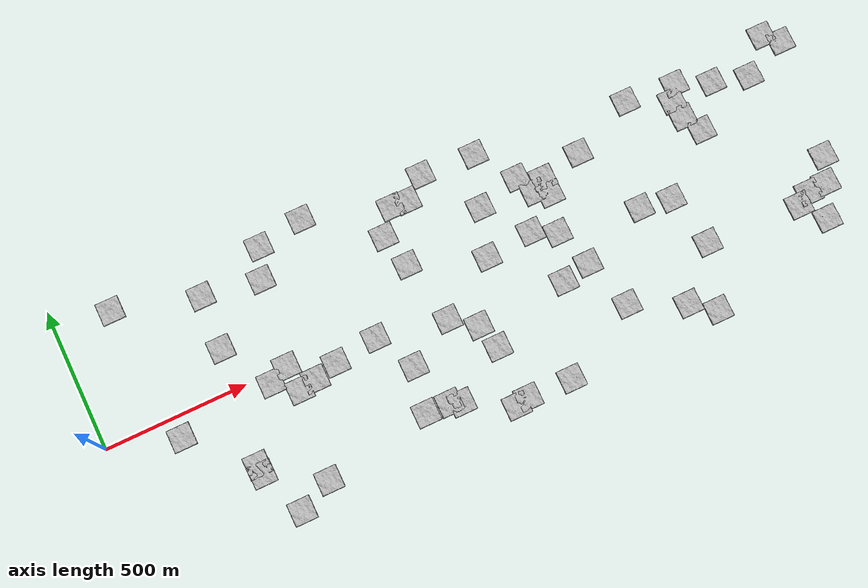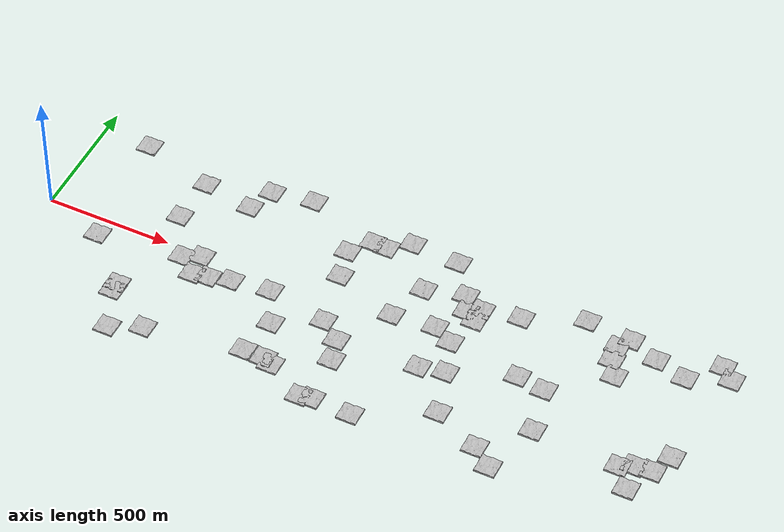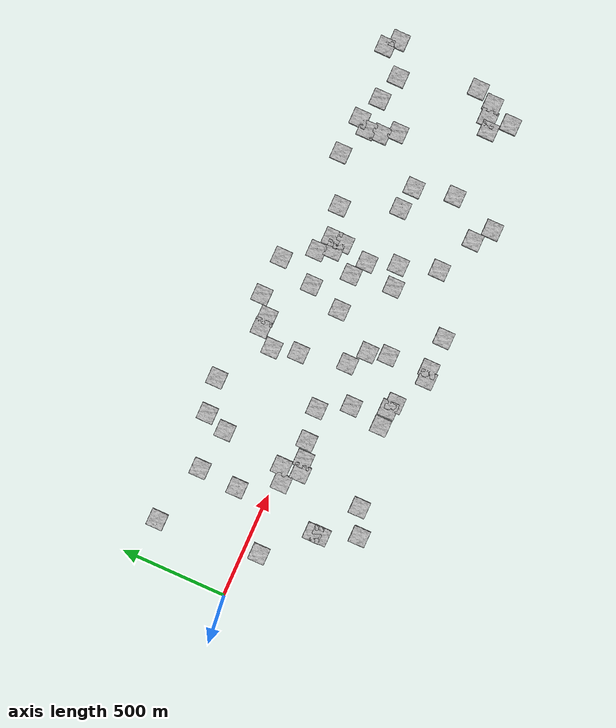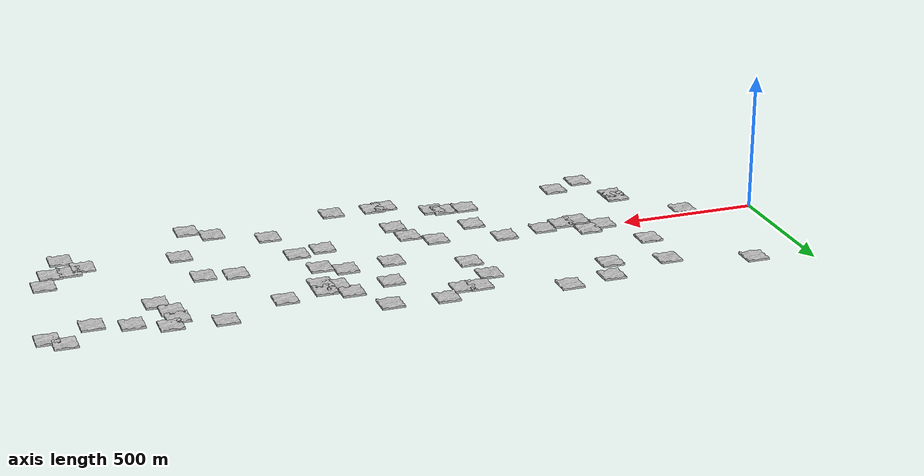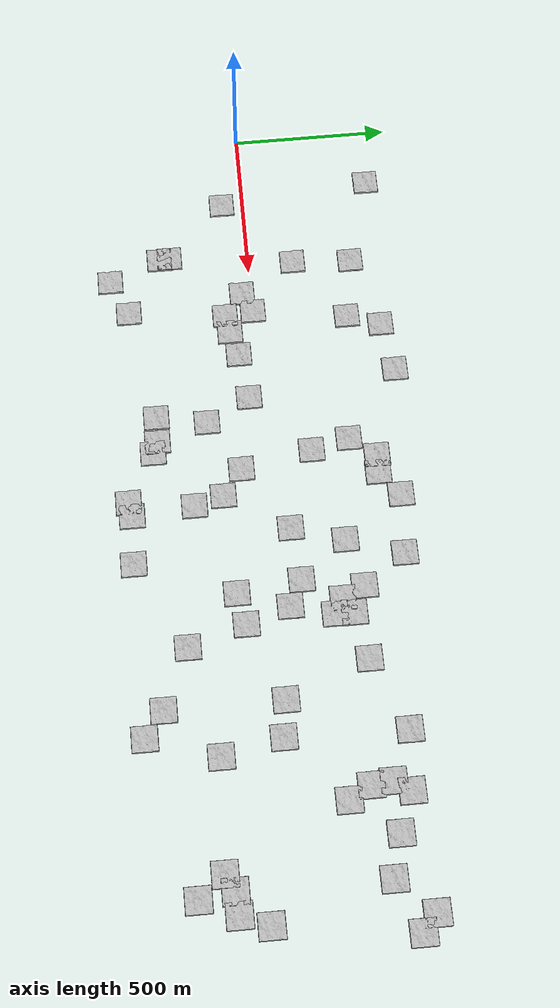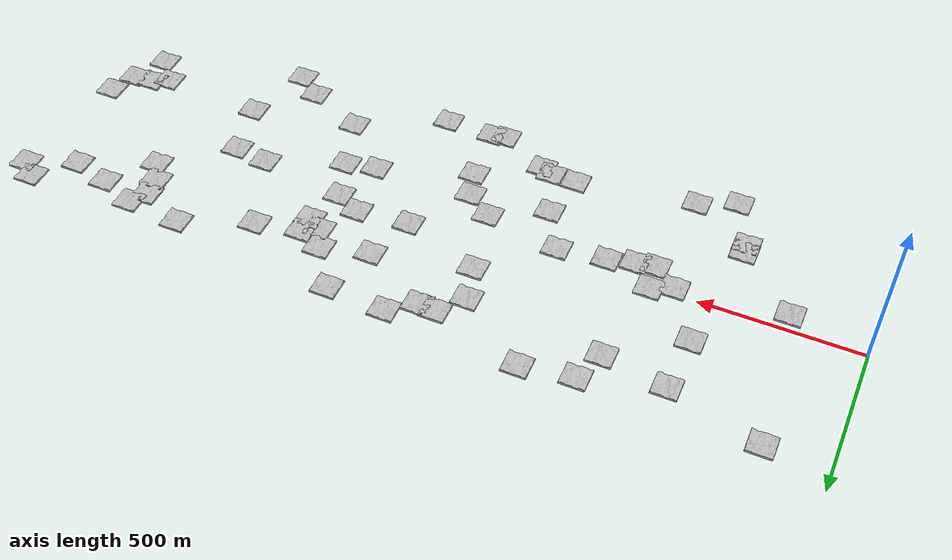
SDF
<sdf version="1.6">
 <world name="default">
  <include><uri>model://sun</uri></include>
  <model name="hill2_27">
   <include><uri>model://hill2</uri><pose>646.43 342.69 -6 0 0 0.0</pose></include>
  </model>
  <model name="hill2_28">
   <include><uri>model://hill2</uri><pose>1198.63 301.53 -6 0 0 1.5708</pose></include>
  </model>
  <model name="hill2_29">
   <include><uri>model://hill2</uri><pose>1280.72 -389.97 -6 0 0 0.0</pose></include>
  </model>
  <model name="hill2_30">
   <include><uri>model://hill2</uri><pose>2161.47 235.4 -6 0 0 1.5708</pose></include>
  </model>
  <model name="hill2_31">
   <include><uri>model://hill2</uri><pose>1157.31 301.32 -6 0 0 4.7124</pose></include>
  </model>
  <model name="hill2_32">
   <include><uri>model://hill2</uri><pose>834.92 -97.77 -6 0 0 3.1416</pose></include>
  </model>
  <model name="hill2_33">
   <include><uri>model://hill2</uri><pose>1564.11 217.54 -6 0 0 1.5708</pose></include>
  </model>
  <model name="hill2_34">
   <include><uri>model://hill2</uri><pose>2538.07 -72.8 -6 0 0 0.0</pose></include>
  </model>
  <model name="hill2_35">
   <include><uri>model://hill2</uri><pose>1234.9 -398.11 -6 0 0 0.0</pose></include>
  </model>
  <model name="hill2_36">
   <include><uri>model://hill2</uri><pose>612.26 -49.26 -6 0 0 0.0</pose></include>
  </model>
  <model name="hill2_37">
   <include><uri>model://hill2</uri><pose>1220.93 303.2 -6 0 0 3.1416</pose></include>
  </model>
  <model name="hill2_38">
   <include><uri>model://hill2</uri><pose>2518.2 202.64 -6 0 0 3.1416</pose></include>
  </model>
  <model name="hill2_39">
   <include><uri>model://hill2</uri><pose>1977.97 -394.26 -6 0 0 0.0</pose></include>
  </model>
  <model name="hill2_40">
   <include><uri>model://hill2</uri><pose>1646.08 177.75 -6 0 0 1.5708</pose></include>
  </model>
  <model name="hill2_41">
   <include><uri>model://hill2</uri><pose>2514.15 -247.22 -6 0 0 3.1416</pose></include>
  </model>
  <model name="hill2_42">
   <include><uri>model://hill2</uri><pose>1656.32 -68.87 -6 0 0 0.0</pose></include>
  </model>
  <model name="hill2_43">
   <include><uri>model://hill2</uri><pose>1792.89 -250.13 -6 0 0 4.7124</pose></include>
  </model>
  <model name="hill2_44">
   <include><uri>model://hill2</uri><pose>1977.85 -334.68 -6 0 0 4.7124</pose></include>
  </model>
  <model name="hill2_45">
   <include><uri>model://hill2</uri><pose>2543.38 392.96 -6 0 0 0.0</pose></include>
  </model>
  <model name="hill2_46">
   <include><uri>model://hill2</uri><pose>1517.05 -395.31 -6 0 0 4.7124</pose></include>
  </model>
  <model name="hill2_47">
   <include><uri>model://hill2</uri><pose>1726.09 198.43 -6 0 0 4.7124</pose></include>
  </model>
  <model name="hill2_48">
   <include><uri>model://hill2</uri><pose>1550.03 350.49 -6 0 0 3.1416</pose></include>
  </model>
  <model name="hill2_49">
   <include><uri>model://hill2</uri><pose>907.88 -76.88 -6 0 0 1.5708</pose></include>
  </model>
  <model name="hill2_50">
   <include><uri>model://hill2</uri><pose>1278.11 363.33 -6 0 0 1.5708</pose></include>
  </model>
  <model name="hill2_51">
   <include><uri>model://hill2</uri><pose>2088.01 9.81 -6 0 0 4.7124</pose></include>
  </model>
  <model name="hill2_52">
   <include><uri>model://hill2</uri><pose>614.96 -69.54 -6 0 0 3.1416</pose></include>
  </model>
  <model name="hill2_53">
   <include><uri>model://hill2</uri><pose>387.49 -327.93 -6 0 0 1.5708</pose></include>
  </model>
  <model name="hill2_54">
   <include><uri>model://hill2</uri><pose>2593.55 347.74 -6 0 0 0.0</pose></include>
  </model>
  <model name="hill2_55">
   <include><uri>model://hill2</uri><pose>1261.49 -276.06 -6 0 0 1.5708</pose></include>
  </model>
  <model name="hill2_56"><include><uri>model://hill2</uri><pose>1897.07 27.7 -6 0 0 0.0</pose></include></model>
  <model name="hill2_57">
   <include><uri>model://hill2</uri><pose>1599.22 228.24 -6 0 0 0.0</pose></include>
  </model>
  <model name="hill2_58">
   <include><uri>model://hill2</uri><pose>1152.34 -41.7 -6 0 0 0.0</pose></include>
  </model>
  <model name="hill2_59">
   <include><uri>model://hill2</uri><pose>466.81 -216.39 -6 0 0 4.7124</pose></include>
  </model>
  <model name="hill2_60">
   <include><uri>model://hill2</uri><pose>1236.88 -104.63 -6 0 0 0.0</pose></include>
  </model>
  <model name="hill2_61">
   <include><uri>model://hill2</uri><pose>1107.1 182.49 -6 0 0 0.0</pose></include>
  </model>
  <model name="hill2_62">
   <include><uri>model://hill2</uri><pose>2095.27 299.31 -6 0 0 3.1416</pose></include>
  </model>
  <model name="hill2_63">
   <include><uri>model://hill2</uri><pose>230.43 377.11 -6 0 0 3.1416</pose></include>
  </model>
  <model name="hill2_64">
   <include><uri>model://hill2</uri><pose>1038.87 -295.92 -6 0 0 0.0</pose></include>
  </model>
  <model name="hill2_65">
   <include><uri>model://hill2</uri><pose>1528.9 29.37 -6 0 0 1.5708</pose></include>
  </model>
  <model name="hill2_66">
   <include><uri>model://hill2</uri><pose>458.14 -412.29 -6 0 0 0.0</pose></include>
  </model>
  <model name="hill2_67">
   <include><uri>model://hill2</uri><pose>671.63 -118.26 -6 0 0 1.5708</pose></include>
  </model>
  <model name="hill2_68">
   <include><uri>model://hill2</uri><pose>1793.2 286.73 -6 0 0 0.0</pose></include>
  </model>
  <model name="hill2_69"><include><uri>model://hill2</uri><pose>603.68 41.63 -6 0 0 0.0</pose></include></model>
  <model name="hill2_70">
   <include><uri>model://hill2</uri><pose>1690.66 66.58 -6 0 0 4.7124</pose></include>
  </model>
  <model name="hill2_71">
   <include><uri>model://hill2</uri><pose>577.54 -358.88 -6 0 0 0.0</pose></include>
  </model>
  <model name="hill2_72">
   <include><uri>model://hill2</uri><pose>523.25 374.39 -6 0 0 4.7124</pose></include>
  </model>
  <model name="hill2_73">
   <include><uri>model://hill2</uri><pose>278.89 -29.19 -6 0 0 4.7124</pose></include>
  </model>
  <model name="hill2_74">
   <include><uri>model://hill2</uri><pose>684.12 368.14 -6 0 0 1.5708</pose></include>
  </model>
  <model name="hill2_75">
   <include><uri>model://hill2</uri><pose>928.58 393.91 -6 0 0 3.1416</pose></include>
  </model>
  <model name="hill2_76">
   <include><uri>model://hill2</uri><pose>983.33 -216.51 -6 0 0 1.5708</pose></include>
  </model>
  <model name="hill2_77">
   <include><uri>model://hill2</uri><pose>2464.86 -192.87 -6 0 0 4.7124</pose></include>
  </model>
  <model name="hill2_78">
   <include><uri>model://hill2</uri><pose>1411.75 175.76 -6 0 0 1.5708</pose></include>
  </model>
  <model name="hill2_79">
   <include><uri>model://hill2</uri><pose>2206.33 101.43 -6 0 0 1.5708</pose></include>
  </model>
  <model name="hill2_80">
   <include><uri>model://hill2</uri><pose>1440.77 91.42 -6 0 0 4.7124</pose></include>
  </model>
  <model name="hill2_81">
   <include><uri>model://hill2</uri><pose>1034.11 -375.75 -6 0 0 3.1416</pose></include>
  </model>
  <model name="hill2_82">
   <include><uri>model://hill2</uri><pose>1155.86 -313.18 -6 0 0 4.7124</pose></include>
  </model>
  <model name="hill2_83">
   <include><uri>model://hill2</uri><pose>2502.25 -160.14 -6 0 0 0.0</pose></include>
  </model>
  <model name="hill2_84">
   <include><uri>model://hill2</uri><pose>2312.51 238.3 -6 0 0 1.5708</pose></include>
  </model>
  <model name="hill2_85">
   <include><uri>model://hill2</uri><pose>2196.06 365.45 -6 0 0 0.0</pose></include>
  </model>
  <model name="hill2_86">
   <include><uri>model://hill2</uri><pose>2129.29 -176.81 -6 0 0 4.7124</pose></include>
  </model>
  <model name="hill2_87">
   <include><uri>model://hill2</uri><pose>2530.38 -273.31 -6 0 0 4.7124</pose></include>
  </model>
  <model name="hill2_88">
   <include><uri>model://hill2</uri><pose>2169.77 249.2 -6 0 0 0.0</pose></include>
  </model>
  <model name="hill2_89">
   <include><uri>model://hill2</uri><pose>432.32 186.47 -6 0 0 0.0</pose></include>
  </model>
  <model name="hill2_90">
   <include><uri>model://hill2</uri><pose>1555.44 -169.51 -6 0 0 1.5708</pose></include>
  </model>
 </world>
</sdf>
